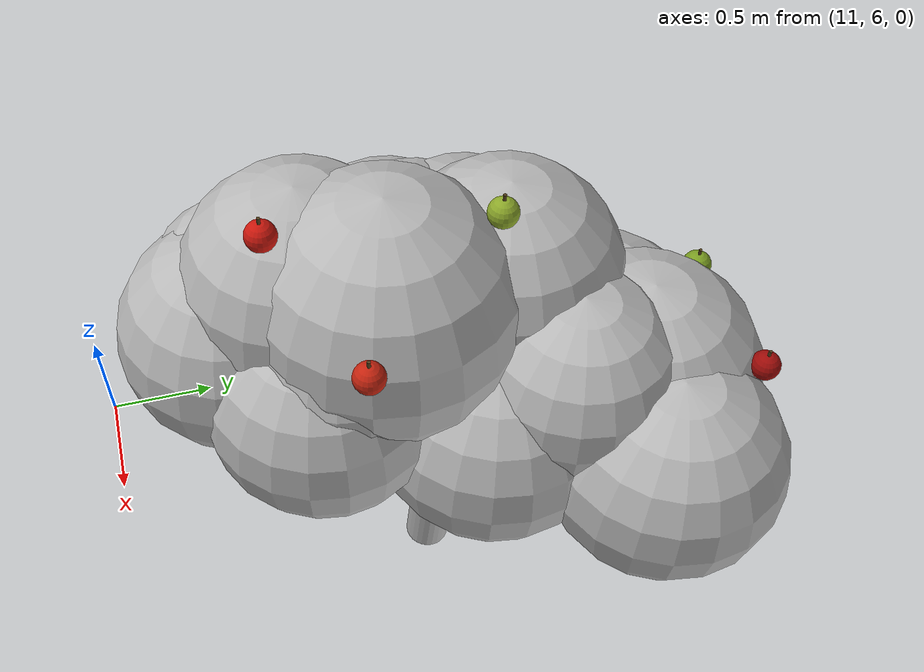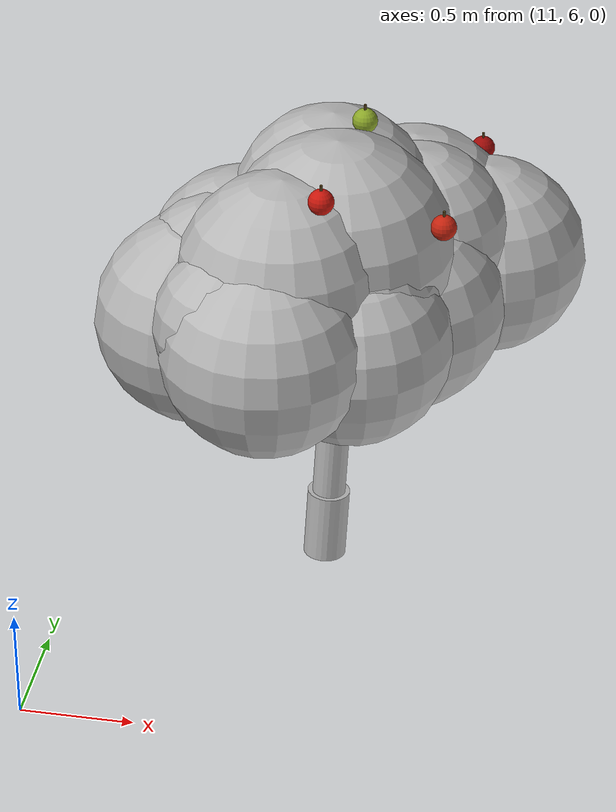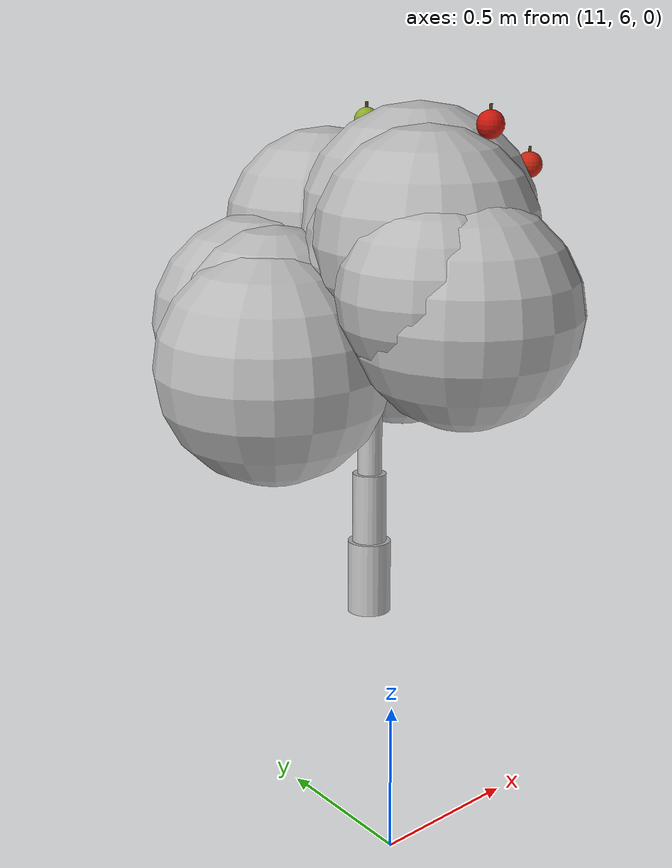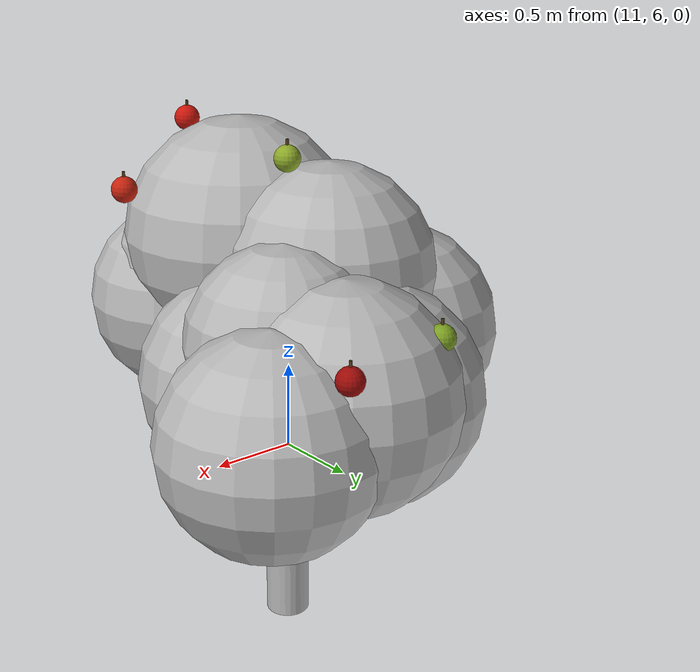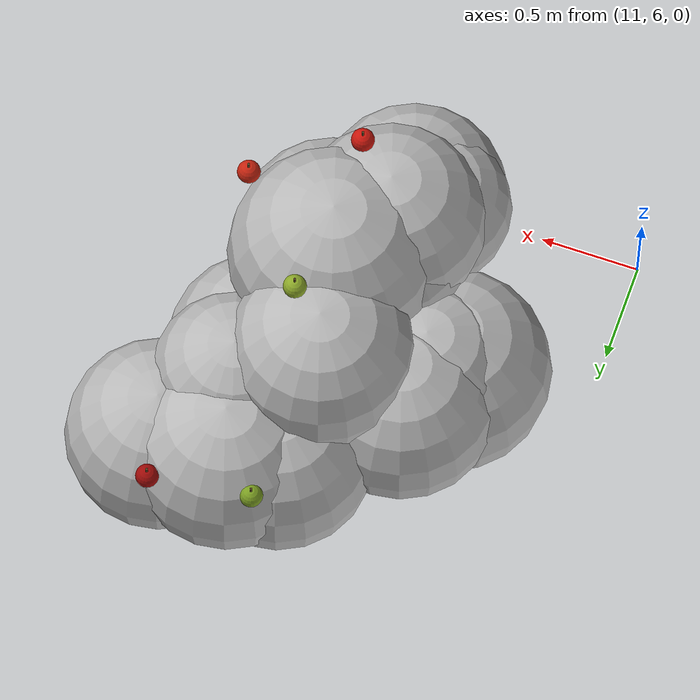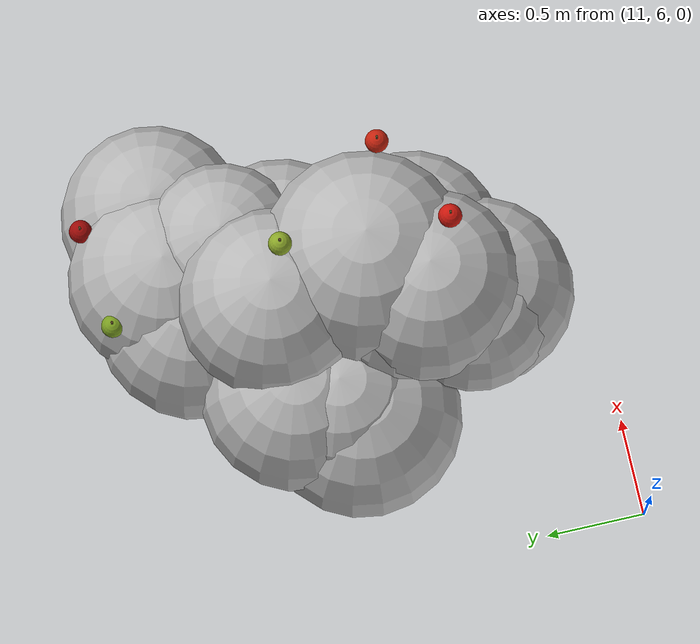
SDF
<sdf version="1.6">
 <world name="default">
  <model name="tree_r5_t13">
   <static>true</static>
   <link name="tree_r5_t13_trunk0">
    <pose>12.0964 7.3990 0.1564 -0.0540 0.0525 0</pose>
    <collision name="tree_r5_t13_trunk0_c">
     <geometry><cylinder><radius>0.0969</radius><length>0.3316</length></cylinder></geometry>
    </collision>
    <visual name="tree_r5_t13_trunk0_v">
     <geometry><cylinder><radius>0.0969</radius><length>0.3316</length></cylinder></geometry>
     <material>
      <script>
       <uri>model://orchard/materials/scripts</uri>
       <uri>model://orchard/materials/textures</uri>
       <name>Orchard/Bark</name>
      </script>
     </material>
    </visual>
   </link>
   <link name="tree_r5_t13_trunk1">
    <pose>12.1129 7.4159 0.4692 -0.0540 0.0525 0</pose>
    <visual name="tree_r5_t13_trunk1_v">
     <geometry><cylinder><radius>0.0756</radius><length>0.3316</length></cylinder></geometry>
     <material>
      <script>
       <uri>model://orchard/materials/scripts</uri>
       <uri>model://orchard/materials/textures</uri>
       <name>Orchard/Bark</name>
      </script>
     </material>
    </visual>
   </link>
   <link name="tree_r5_t13_trunk2">
    <pose>12.1293 7.4328 0.7820 -0.0540 0.0525 0</pose>
    <visual name="tree_r5_t13_trunk2_v">
     <geometry><cylinder><radius>0.0543</radius><length>0.3316</length></cylinder></geometry>
     <material>
      <script>
       <uri>model://orchard/materials/scripts</uri>
       <uri>model://orchard/materials/textures</uri>
       <name>Orchard/Bark</name>
      </script>
     </material>
    </visual>
   </link>
   <link name="tree_r5_t13_br0">
    <pose>12.3970 7.5178 1.1068 0.0000 1.0140 0.2868</pose>
    <visual name="tree_r5_t13_br0_v">
     <geometry><cylinder><radius>0.0297</radius><length>0.6374</length></cylinder></geometry>
     <material>
      <script>
       <uri>model://orchard/materials/scripts</uri>
       <uri>model://orchard/materials/textures</uri>
       <name>Orchard/Bark</name>
      </script>
     </material>
    </visual>
   </link>
   <link name="tree_r5_t13_br1">
    <pose>12.2975 7.6707 1.0792 0.0000 1.1045 0.9619</pose>
    <visual name="tree_r5_t13_br1_v">
     <geometry><cylinder><radius>0.0221</radius><length>0.6264</length></cylinder></geometry>
     <material>
      <script>
       <uri>model://orchard/materials/scripts</uri>
       <uri>model://orchard/materials/textures</uri>
       <name>Orchard/Bark</name>
      </script>
     </material>
    </visual>
   </link>
   <link name="tree_r5_t13_br2">
    <pose>12.0829 7.7260 1.1428 0.0000 0.9570 1.7603</pose>
    <visual name="tree_r5_t13_br2_v">
     <geometry><cylinder><radius>0.0250</radius><length>0.7095</length></cylinder></geometry>
     <material>
      <script>
       <uri>model://orchard/materials/scripts</uri>
       <uri>model://orchard/materials/textures</uri>
       <name>Orchard/Bark</name>
      </script>
     </material>
    </visual>
   </link>
   <link name="tree_r5_t13_br3">
    <pose>11.7805 7.4804 1.1210 0.0000 1.1006 3.0324</pose>
    <visual name="tree_r5_t13_br3_v">
     <geometry><cylinder><radius>0.0356</radius><length>0.8058</length></cylinder></geometry>
     <material>
      <script>
       <uri>model://orchard/materials/scripts</uri>
       <uri>model://orchard/materials/textures</uri>
       <name>Orchard/Bark</name>
      </script>
     </material>
    </visual>
   </link>
   <link name="tree_r5_t13_br4">
    <pose>11.9731 7.1826 1.1824 0.0000 0.8984 4.1461</pose>
    <visual name="tree_r5_t13_br4_v">
     <geometry><cylinder><radius>0.0258</radius><length>0.7835</length></cylinder></geometry>
     <material>
      <script>
       <uri>model://orchard/materials/scripts</uri>
       <uri>model://orchard/materials/textures</uri>
       <name>Orchard/Bark</name>
      </script>
     </material>
    </visual>
   </link>
   <link name="tree_r5_t13_br5">
    <pose>12.2003 7.2382 1.1938 0.0000 0.6941 5.0126</pose>
    <visual name="tree_r5_t13_br5_v">
     <geometry><cylinder><radius>0.0309</radius><length>0.6645</length></cylinder></geometry>
     <material>
      <script>
       <uri>model://orchard/materials/scripts</uri>
       <uri>model://orchard/materials/textures</uri>
       <name>Orchard/Bark</name>
      </script>
     </material>
    </visual>
   </link>
   <link name="tree_r5_t13_fol0">
    <pose>12.0802 7.6552 1.6963 0 0 0</pose>
    <visual name="tree_r5_t13_fol0_v">
     <geometry><sphere><radius>0.4461</radius></sphere></geometry>
     <material>
      <script>
       <uri>model://orchard/materials/scripts</uri>
       <uri>model://orchard/materials/textures</uri>
       <name>Orchard/Foliage3</name>
      </script>
     </material>
    </visual>
   </link>
   <link name="tree_r5_t13_fol1">
    <pose>12.2859 6.9270 1.4379 0 0 0</pose>
    <visual name="tree_r5_t13_fol1_v">
     <geometry><sphere><radius>0.4347</radius></sphere></geometry>
     <material>
      <script>
       <uri>model://orchard/materials/scripts</uri>
       <uri>model://orchard/materials/textures</uri>
       <name>Orchard/Foliage1</name>
      </script>
     </material>
    </visual>
   </link>
   <link name="tree_r5_t13_fol2">
    <pose>11.8418 6.7353 1.6048 0 0 0</pose>
    <visual name="tree_r5_t13_fol2_v">
     <geometry><sphere><radius>0.3681</radius></sphere></geometry>
     <material>
      <script>
       <uri>model://orchard/materials/scripts</uri>
       <uri>model://orchard/materials/textures</uri>
       <name>Orchard/Foliage1</name>
      </script>
     </material>
    </visual>
   </link>
   <link name="tree_r5_t13_fol3">
    <pose>11.9945 7.0511 1.6741 0 0 0</pose>
    <visual name="tree_r5_t13_fol3_v">
     <geometry><sphere><radius>0.4127</radius></sphere></geometry>
     <material>
      <script>
       <uri>model://orchard/materials/scripts</uri>
       <uri>model://orchard/materials/textures</uri>
       <name>Orchard/Foliage3</name>
      </script>
     </material>
    </visual>
   </link>
   <link name="tree_r5_t13_fol4">
    <pose>12.4083 7.5432 1.2605 0 0 0</pose>
    <visual name="tree_r5_t13_fol4_v">
     <geometry><sphere><radius>0.4598</radius></sphere></geometry>
     <material>
      <script>
       <uri>model://orchard/materials/scripts</uri>
       <uri>model://orchard/materials/textures</uri>
       <name>Orchard/Foliage0</name>
      </script>
     </material>
    </visual>
   </link>
   <link name="tree_r5_t13_fol5">
    <pose>12.3783 8.1109 1.3477 0 0 0</pose>
    <visual name="tree_r5_t13_fol5_v">
     <geometry><sphere><radius>0.4732</radius></sphere></geometry>
     <material>
      <script>
       <uri>model://orchard/materials/scripts</uri>
       <uri>model://orchard/materials/textures</uri>
       <name>Orchard/Foliage0</name>
      </script>
     </material>
    </visual>
   </link>
   <link name="tree_r5_t13_fol6">
    <pose>12.1611 8.0231 1.2826 0 0 0</pose>
    <visual name="tree_r5_t13_fol6_v">
     <geometry><sphere><radius>0.4613</radius></sphere></geometry>
     <material>
      <script>
       <uri>model://orchard/materials/scripts</uri>
       <uri>model://orchard/materials/textures</uri>
       <name>Orchard/Foliage2</name>
      </script>
     </material>
    </visual>
   </link>
   <link name="tree_r5_t13_fol7">
    <pose>11.6372 7.4320 1.3723 0 0 0</pose>
    <visual name="tree_r5_t13_fol7_v">
     <geometry><sphere><radius>0.4199</radius></sphere></geometry>
     <material>
      <script>
       <uri>model://orchard/materials/scripts</uri>
       <uri>model://orchard/materials/textures</uri>
       <name>Orchard/Foliage1</name>
      </script>
     </material>
    </visual>
   </link>
   <link name="tree_r5_t13_fol8">
    <pose>12.7183 8.1046 1.2441 0 0 0</pose>
    <visual name="tree_r5_t13_fol8_v">
     <geometry><sphere><radius>0.4509</radius></sphere></geometry>
     <material>
      <script>
       <uri>model://orchard/materials/scripts</uri>
       <uri>model://orchard/materials/textures</uri>
       <name>Orchard/Foliage2</name>
      </script>
     </material>
    </visual>
   </link>
   <link name="tree_r5_t13_fol9">
    <pose>12.1803 7.1837 1.7682 0 0 0</pose>
    <visual name="tree_r5_t13_fol9_v">
     <geometry><sphere><radius>0.4995</radius></sphere></geometry>
     <material>
      <script>
       <uri>model://orchard/materials/scripts</uri>
       <uri>model://orchard/materials/textures</uri>
       <name>Orchard/Foliage0</name>
      </script>
     </material>
    </visual>
   </link>
   <link name="tree_r5_t13_fol10">
    <pose>11.6937 7.6216 1.3564 0 0 0</pose>
    <visual name="tree_r5_t13_fol10_v">
     <geometry><sphere><radius>0.4587</radius></sphere></geometry>
     <material>
      <script>
       <uri>model://orchard/materials/scripts</uri>
       <uri>model://orchard/materials/textures</uri>
       <name>Orchard/Foliage3</name>
      </script>
     </material>
    </visual>
   </link>
   <link name="tree_r5_t13_fol11">
    <pose>11.9597 6.6776 1.5187 0 0 0</pose>
    <visual name="tree_r5_t13_fol11_v">
     <geometry><sphere><radius>0.4475</radius></sphere></geometry>
     <material>
      <script>
       <uri>model://orchard/materials/scripts</uri>
       <uri>model://orchard/materials/textures</uri>
       <name>Orchard/Foliage0</name>
      </script>
     </material>
    </visual>
   </link>
   <link name="tree_r5_t13_fol12">
    <pose>12.4401 7.8198 1.5008 0 0 0</pose>
    <visual name="tree_r5_t13_fol12_v">
     <geometry><sphere><radius>0.4021</radius></sphere></geometry>
     <material>
      <script>
       <uri>model://orchard/materials/scripts</uri>
       <uri>model://orchard/materials/textures</uri>
       <name>Orchard/Foliage3</name>
      </script>
     </material>
    </visual>
   </link>
   <link name="tree_r5_t13_fol13">
    <pose>11.9905 6.9256 1.7533 0 0 0</pose>
    <visual name="tree_r5_t13_fol13_v">
     <geometry><sphere><radius>0.4522</radius></sphere></geometry>
     <material>
      <script>
       <uri>model://orchard/materials/scripts</uri>
       <uri>model://orchard/materials/textures</uri>
       <name>Orchard/Foliage2</name>
      </script>
     </material>
    </visual>
   </link>
   <link name="tree_r5_t13_fol14">
    <pose>11.5461 7.3436 1.2449 0 0 0</pose>
    <visual name="tree_r5_t13_fol14_v">
     <geometry><sphere><radius>0.4811</radius></sphere></geometry>
     <material>
      <script>
       <uri>model://orchard/materials/scripts</uri>
       <uri>model://orchard/materials/textures</uri>
       <name>Orchard/Foliage2</name>
      </script>
     </material>
    </visual>
   </link>
   <link name="tree_r5_t13_fol15">
    <pose>12.2861 7.0247 1.6147 0 0 0</pose>
    <visual name="tree_r5_t13_fol15_v">
     <geometry><sphere><radius>0.3633</radius></sphere></geometry>
     <material>
      <script>
       <uri>model://orchard/materials/scripts</uri>
       <uri>model://orchard/materials/textures</uri>
       <name>Orchard/Foliage2</name>
      </script>
     </material>
    </visual>
   </link>
   <link name="tree_r5_t13_ap0">
    <pose>12.6419 8.4582 1.5898 0 0 0</pose>
    <visual name="tree_r5_t13_ap0_v">
     <geometry><sphere><radius>0.0550</radius></sphere></geometry>
     <material>
      <ambient>0.248 0.016 0.012 1.00</ambient>
      <diffuse>0.620 0.040 0.030 1.00</diffuse>
      <specular>0.45 0.35 0.32 1</specular>
     </material>
    </visual>
   </link>
   <link name="tree_r5_t13_st0">
    <pose>12.6419 8.4582 1.6420 0 0 0</pose>
    <visual name="tree_r5_t13_st0_v">
     <geometry><cylinder><radius>0.0060</radius><length>0.0500</length></cylinder></geometry>
     <material><ambient>0.128 0.096 0.040 1.00</ambient><diffuse>0.320 0.240 0.100 1.00</diffuse></material>
    </visual>
   </link>
   <link name="tree_r5_t13_ap1">
    <pose>12.1786 6.7882 2.1976 0 0 0</pose>
    <visual name="tree_r5_t13_ap1_v">
     <geometry><sphere><radius>0.0550</radius></sphere></geometry>
     <material>
      <ambient>0.320 0.036 0.020 1.00</ambient>
      <diffuse>0.800 0.090 0.050 1.00</diffuse>
      <specular>0.45 0.35 0.32 1</specular>
     </material>
    </visual>
   </link>
   <link name="tree_r5_t13_st1">
    <pose>12.1786 6.7882 2.2499 0 0 0</pose>
    <visual name="tree_r5_t13_st1_v">
     <geometry><cylinder><radius>0.0060</radius><length>0.0500</length></cylinder></geometry>
     <material><ambient>0.128 0.096 0.040 1.00</ambient><diffuse>0.320 0.240 0.100 1.00</diffuse></material>
    </visual>
   </link>
   <link name="tree_r5_t13_ap2">
    <pose>12.1526 8.4038 1.6231 0 0 0</pose>
    <visual name="tree_r5_t13_ap2_v">
     <geometry><sphere><radius>0.0550</radius></sphere></geometry>
     <material>
      <ambient>0.192 0.248 0.052 1.00</ambient>
      <diffuse>0.480 0.620 0.130 1.00</diffuse>
      <specular>0.45 0.35 0.32 1</specular>
     </material>
    </visual>
   </link>
   <link name="tree_r5_t13_st2">
    <pose>12.1526 8.4038 1.6754 0 0 0</pose>
    <visual name="tree_r5_t13_st2_v">
     <geometry><cylinder><radius>0.0060</radius><length>0.0500</length></cylinder></geometry>
     <material><ambient>0.128 0.096 0.040 1.00</ambient><diffuse>0.320 0.240 0.100 1.00</diffuse></material>
    </visual>
   </link>
   <link name="tree_r5_t13_ap3">
    <pose>12.2310 7.5741 2.1614 0 0 0</pose>
    <visual name="tree_r5_t13_ap3_v">
     <geometry><sphere><radius>0.0550</radius></sphere></geometry>
     <material>
      <ambient>0.220 0.264 0.064 1.00</ambient>
      <diffuse>0.550 0.660 0.160 1.00</diffuse>
      <specular>0.45 0.35 0.32 1</specular>
     </material>
    </visual>
   </link>
   <link name="tree_r5_t13_st3">
    <pose>12.2310 7.5741 2.2137 0 0 0</pose>
    <visual name="tree_r5_t13_st3_v">
     <geometry><cylinder><radius>0.0060</radius><length>0.0500</length></cylinder></geometry>
     <material><ambient>0.128 0.096 0.040 1.00</ambient><diffuse>0.320 0.240 0.100 1.00</diffuse></material>
    </visual>
   </link>
   <link name="tree_r5_t13_ap4">
    <pose>12.6554 7.0229 1.9913 0 0 0</pose>
    <visual name="tree_r5_t13_ap4_v">
     <geometry><sphere><radius>0.0550</radius></sphere></geometry>
     <material>
      <ambient>0.312 0.056 0.024 1.00</ambient>
      <diffuse>0.780 0.140 0.060 1.00</diffuse>
      <specular>0.45 0.35 0.32 1</specular>
     </material>
    </visual>
   </link>
   <link name="tree_r5_t13_st4">
    <pose>12.6554 7.0229 2.0435 0 0 0</pose>
    <visual name="tree_r5_t13_st4_v">
     <geometry><cylinder><radius>0.0060</radius><length>0.0500</length></cylinder></geometry>
     <material><ambient>0.128 0.096 0.040 1.00</ambient><diffuse>0.320 0.240 0.100 1.00</diffuse></material>
    </visual>
   </link>
  </model>
 </world>
</sdf>
